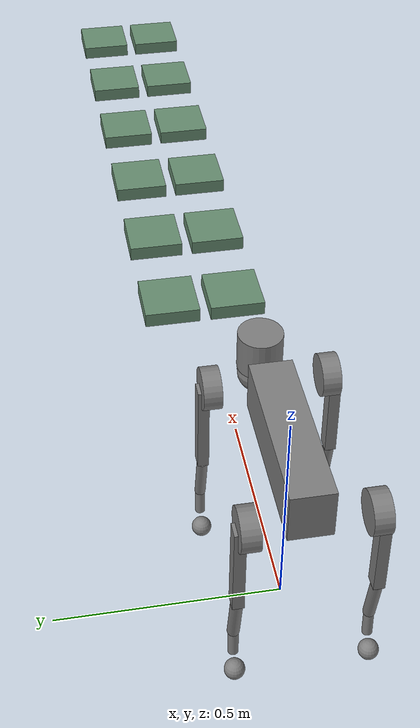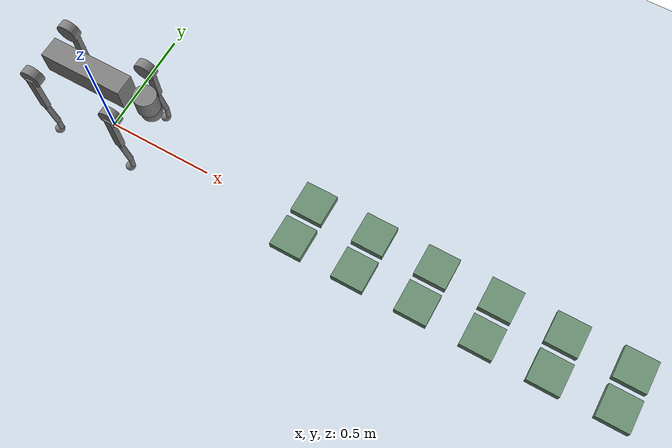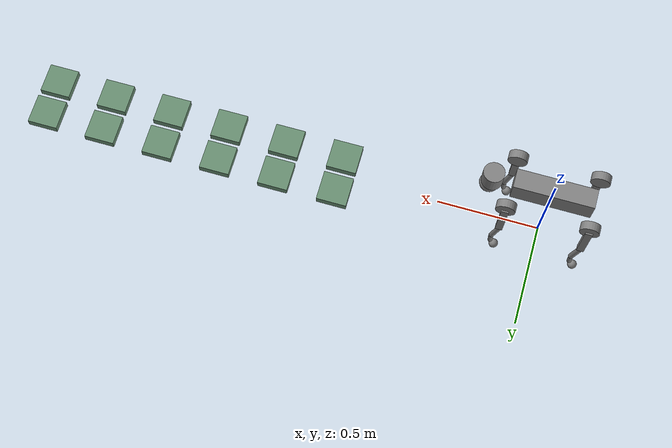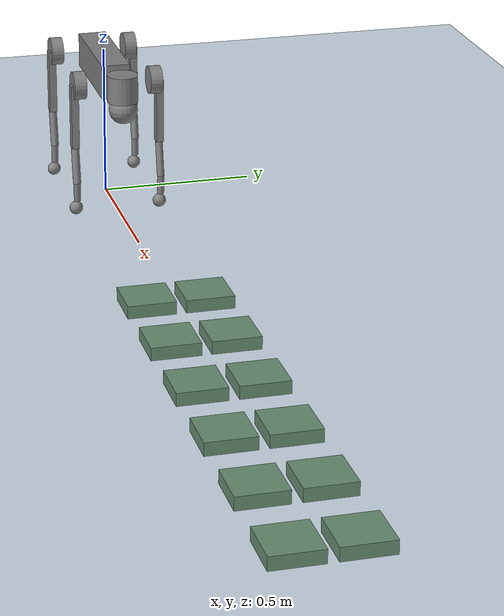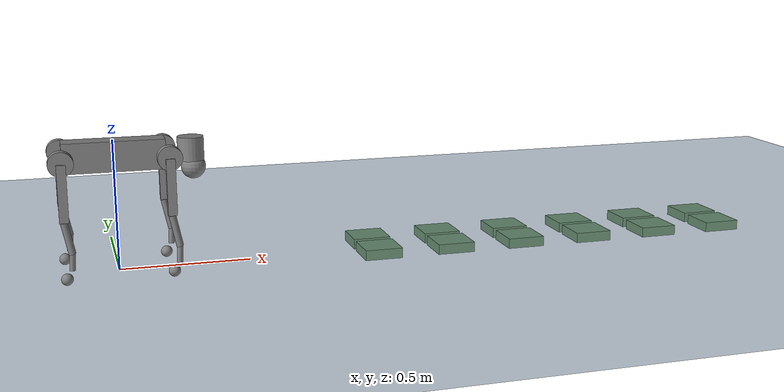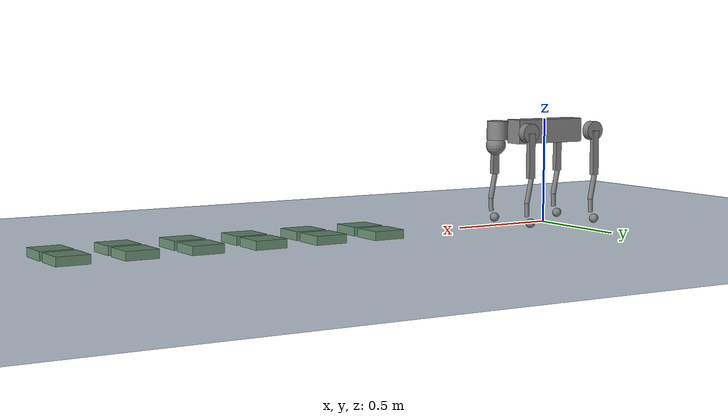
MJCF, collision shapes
<mujoco model="go2_stepping">
  <compiler angle="radian" meshdir="../../mujoco_menagerie/unitree_go2/assets" autolimits="true"/>

  <option cone="elliptic" impratio="100"/>

  <default>
    <default class="go2">
      <geom friction="0.6" margin="0.001" condim="1"/>
      <joint axis="0 1 0" damping="2" armature="0.01" frictionloss="0.2" actuatorfrcrange="-23.7 23.7"/>
      <motor ctrlrange="-23.7 23.7"/>
      <default class="abduction">
        <joint axis="1 0 0" range="-1.0472 1.0472"/>
      </default>
      <default class="hip">
        <default class="front_hip">
          <joint range="-1.5708 3.4907"/>
        </default>
        <default class="back_hip">
          <joint range="-0.5236 4.5379"/>
        </default>
      </default>
      <default class="knee">
        <joint range="-2.7227 -0.83776" actuatorfrcrange="-45.43 45.43"/>
        <motor ctrlrange="-45.43 45.43"/>
      </default>
      <default class="visual">
        <geom type="mesh" contype="0" conaffinity="0" group="1"/>
      </default>
      <default class="collision">
        <geom group="3"/>
        <default class="foot">
          <geom size="0.022" pos="-0.002 0 -0.213" priority="1" solimp="0.015 1 0.022" condim="6"
            friction="0.8 0.02 0.01"/>
        </default>
      </default>
    </default>
  </default>

  <asset>
    <material name="metal" rgba=".9 .95 .95 1"/>
    <material name="black" rgba="0 0 0 1"/>
    <material name="white" rgba="1 1 1 1"/>
    <material name="gray" rgba="0.671705 0.692426 0.774270 1"/>

    <mesh file="base_0.obj"/>
    <mesh file="base_1.obj"/>
    <mesh file="base_2.obj"/>
    <mesh file="base_3.obj"/>
    <mesh file="base_4.obj"/>
    <mesh file="hip_0.obj"/>
    <mesh file="hip_1.obj"/>
    <mesh file="thigh_0.obj"/>
    <mesh file="thigh_1.obj"/>
    <mesh file="thigh_mirror_0.obj"/>
    <mesh file="thigh_mirror_1.obj"/>
    <mesh file="calf_0.obj"/>
    <mesh file="calf_1.obj"/>
    <mesh file="calf_mirror_0.obj"/>
    <mesh file="calf_mirror_1.obj"/>
    <mesh file="foot.obj"/>
  </asset>

  <worldbody>
    <geom name="floor" type="plane" size="0 0 0.05" pos="0 0 0" condim="3" friction="0.8 0.02 0.01" rgba="0.8 0.85 0.9 1"/>
    <geom name="ss0L" type="box" group="2" size="0.075 0.075 0.02" pos="1.00 0.09 0.02" rgba="0.40 0.55 0.44 1"/>
    <geom name="ss0R" type="box" group="2" size="0.075 0.075 0.02" pos="1.00 -0.09 0.02" rgba="0.40 0.55 0.44 1"/>
    <geom name="ss1L" type="box" group="2" size="0.075 0.075 0.02" pos="1.30 0.09 0.02" rgba="0.40 0.55 0.44 1"/>
    <geom name="ss1R" type="box" group="2" size="0.075 0.075 0.02" pos="1.30 -0.09 0.02" rgba="0.40 0.55 0.44 1"/>
    <geom name="ss2L" type="box" group="2" size="0.075 0.075 0.02" pos="1.60 0.09 0.02" rgba="0.40 0.55 0.44 1"/>
    <geom name="ss2R" type="box" group="2" size="0.075 0.075 0.02" pos="1.60 -0.09 0.02" rgba="0.40 0.55 0.44 1"/>
    <geom name="ss3L" type="box" group="2" size="0.075 0.075 0.02" pos="1.90 0.09 0.02" rgba="0.40 0.55 0.44 1"/>
    <geom name="ss3R" type="box" group="2" size="0.075 0.075 0.02" pos="1.90 -0.09 0.02" rgba="0.40 0.55 0.44 1"/>
    <geom name="ss4L" type="box" group="2" size="0.075 0.075 0.02" pos="2.20 0.09 0.02" rgba="0.40 0.55 0.44 1"/>
    <geom name="ss4R" type="box" group="2" size="0.075 0.075 0.02" pos="2.20 -0.09 0.02" rgba="0.40 0.55 0.44 1"/>
    <geom name="ss5L" type="box" group="2" size="0.075 0.075 0.02" pos="2.50 0.09 0.02" rgba="0.40 0.55 0.44 1"/>
    <geom name="ss5R" type="box" group="2" size="0.075 0.075 0.02" pos="2.50 -0.09 0.02" rgba="0.40 0.55 0.44 1"/>
    <body name="base" pos="0 0 0.445" childclass="go2">
      <inertial pos="0.021112 0 -0.005366" quat="-0.000543471 0.713435 -0.00173769 0.700719" mass="6.921"
        diaginertia="0.107027 0.0980771 0.0244531"/>
      <freejoint/>
      <geom mesh="base_0" material="black" class="visual"/>
      <geom mesh="base_1" material="black" class="visual"/>
      <geom mesh="base_2" material="black" class="visual"/>
      <geom mesh="base_3" material="white" class="visual"/>
      <geom mesh="base_4" material="gray" class="visual"/>
      <geom size="0.1881 0.04675 0.057" type="box" class="collision"/>
      <geom size="0.05 0.045" pos="0.285 0 0.01" type="cylinder" class="collision"/>
      <geom size="0.047" pos="0.293 0 -0.06" class="collision"/>
      <site name="imu" pos="-0.02557 0 0.04232"/>
      <body name="FL_hip_link" pos="0.1934 0.0465 0">
        <inertial pos="-0.0054 0.00194 -0.000105" quat="0.497014 0.499245 0.505462 0.498237" mass="0.678"
          diaginertia="0.00088403 0.000596003 0.000479967"/>
        <joint name="FL_hip_joint" class="abduction"/>
        <geom mesh="hip_0" material="metal" class="visual"/>
        <geom mesh="hip_1" material="gray" class="visual"/>
        <geom size="0.046 0.02" pos="0 0.08 0" quat="1 1 0 0" type="cylinder" class="collision"/>
        <body name="FL_thigh" pos="0 0.0955 0">
          <inertial pos="-0.00374 -0.0223 -0.0327" quat="0.829533 0.0847635 -0.0200632 0.551623" mass="1.152"
            diaginertia="0.00594973 0.00584149 0.000878787"/>
          <joint name="FL_thigh_joint" class="front_hip"/>
          <geom mesh="thigh_0" material="metal" class="visual"/>
          <geom mesh="thigh_1" material="gray" class="visual"/>
          <geom size="0.1065 0.01225 0.017" pos="0 0 -0.1065" quat="0.707107 0 0.707107 0" type="box"
            class="collision"/>
          <body name="FL_foot_link" pos="0 0 -0.213">
            <inertial pos="0.00629595 -0.000622121 -0.141417" quat="0.710672 0.00154099 -0.00450087 0.703508"
              mass="0.241352" diaginertia="0.0014901 0.00146356 5.31397e-05"/>
            <joint name="FL_calf_joint" class="knee"/>
            <geom mesh="calf_0" material="gray" class="visual"/>
            <geom mesh="calf_1" material="black" class="visual"/>
            <geom size="0.012 0.06" pos="0.008 0 -0.06" quat="0.994493 0 -0.104807 0" type="cylinder"
              class="collision"/>
            <geom size="0.011 0.0325" pos="0.02 0 -0.148" quat="0.999688 0 0.0249974 0" type="cylinder"
              class="collision"/>
            <geom pos="0 0 -0.213" mesh="foot" class="visual" material="black"/>
            <geom name="FL_sphere" class="foot"/>
          </body>
        </body>
      </body>
      <body name="FR_hip_link" pos="0.1934 -0.0465 0">
        <inertial pos="-0.0054 -0.00194 -0.000105" quat="0.498237 0.505462 0.499245 0.497014" mass="0.678"
          diaginertia="0.00088403 0.000596003 0.000479967"/>
        <joint name="FR_hip_joint" class="abduction"/>
        <geom mesh="hip_0" material="metal" class="visual" quat="4.63268e-05 1 0 0"/>
        <geom mesh="hip_1" material="gray" class="visual" quat="4.63268e-05 1 0 0"/>
        <geom size="0.046 0.02" pos="0 -0.08 0" quat="0.707107 0.707107 0 0" type="cylinder" class="collision"/>
        <body name="FR_thigh" pos="0 -0.0955 0">
          <inertial pos="-0.00374 0.0223 -0.0327" quat="0.551623 -0.0200632 0.0847635 0.829533" mass="1.152"
            diaginertia="0.00594973 0.00584149 0.000878787"/>
          <joint name="FR_thigh_joint" class="front_hip"/>
          <geom mesh="thigh_mirror_0" material="metal" class="visual"/>
          <geom mesh="thigh_mirror_1" material="gray" class="visual"/>
          <geom size="0.1065 0.01225 0.017" pos="0 0 -0.1065" quat="0.707107 0 0.707107 0" type="box"
            class="collision"/>
          <body name="FR_foot_link" pos="0 0 -0.213">
            <inertial pos="0.00629595 0.000622121 -0.141417" quat="0.703508 -0.00450087 0.00154099 0.710672"
              mass="0.241352" diaginertia="0.0014901 0.00146356 5.31397e-05"/>
            <joint name="FR_calf_joint" class="knee"/>
            <geom mesh="calf_mirror_0" material="gray" class="visual"/>
            <geom mesh="calf_mirror_1" material="black" class="visual"/>
            <geom size="0.013 0.06" pos="0.01 0 -0.06" quat="0.995004 0 -0.0998334 0" type="cylinder"
              class="collision"/>
            <geom size="0.011 0.0325" pos="0.02 0 -0.148" quat="0.999688 0 0.0249974 0" type="cylinder"
              class="collision"/>
            <geom pos="0 0 -0.213" mesh="foot" class="visual" material="black"/>
            <geom name="FR_sphere" class="foot"/>
          </body>
        </body>
      </body>
      <body name="HL_hip_link" pos="-0.1934 0.0465 0">
        <inertial pos="0.0054 0.00194 -0.000105" quat="0.505462 0.498237 0.497014 0.499245" mass="0.678"
          diaginertia="0.00088403 0.000596003 0.000479967"/>
        <joint name="HL_hip_joint" class="abduction"/>
        <geom mesh="hip_0" material="metal" class="visual" quat="4.63268e-05 0 1 0"/>
        <geom mesh="hip_1" material="gray" class="visual" quat="4.63268e-05 0 1 0"/>
        <geom size="0.046 0.02" pos="0 0.08 0" quat="0.707107 0.707107 0 0" type="cylinder" class="collision"/>
        <body name="HL_thigh" pos="0 0.0955 0">
          <inertial pos="-0.00374 -0.0223 -0.0327" quat="0.829533 0.0847635 -0.0200632 0.551623" mass="1.152"
            diaginertia="0.00594973 0.00584149 0.000878787"/>
          <joint name="HL_thigh_joint" class="back_hip"/>
          <geom mesh="thigh_0" material="metal" class="visual"/>
          <geom mesh="thigh_1" material="gray" class="visual"/>
          <geom size="0.1065 0.01225 0.017" pos="0 0 -0.1065" quat="0.707107 0 0.707107 0" type="box"
            class="collision"/>
          <body name="HL_foot_link" pos="0 0 -0.213">
            <inertial pos="0.00629595 -0.000622121 -0.141417" quat="0.710672 0.00154099 -0.00450087 0.703508"
              mass="0.241352" diaginertia="0.0014901 0.00146356 5.31397e-05"/>
            <joint name="HL_calf_joint" class="knee"/>
            <geom mesh="calf_0" material="gray" class="visual"/>
            <geom mesh="calf_1" material="black" class="visual"/>
            <geom size="0.013 0.06" pos="0.01 0 -0.06" quat="0.995004 0 -0.0998334 0" type="cylinder"
              class="collision"/>
            <geom size="0.011 0.0325" pos="0.02 0 -0.148" quat="0.999688 0 0.0249974 0" type="cylinder"
              class="collision"/>
            <geom pos="0 0 -0.213" mesh="foot" class="visual" material="black"/>
            <geom name="HL_sphere" class="foot"/>
          </body>
        </body>
      </body>
      <body name="HR_hip_link" pos="-0.1934 -0.0465 0">
        <inertial pos="0.0054 -0.00194 -0.000105" quat="0.499245 0.497014 0.498237 0.505462" mass="0.678"
          diaginertia="0.00088403 0.000596003 0.000479967"/>
        <joint name="HR_hip_joint" class="abduction"/>
        <geom mesh="hip_0" material="metal" class="visual" quat="2.14617e-09 4.63268e-05 4.63268e-05 -1"/>
        <geom mesh="hip_1" material="gray" class="visual" quat="2.14617e-09 4.63268e-05 4.63268e-05 -1"/>
        <geom size="0.046 0.02" pos="0 -0.08 0" quat="0.707107 0.707107 0 0" type="cylinder" class="collision"/>
        <body name="HR_thigh" pos="0 -0.0955 0">
          <inertial pos="-0.00374 0.0223 -0.0327" quat="0.551623 -0.0200632 0.0847635 0.829533" mass="1.152"
            diaginertia="0.00594973 0.00584149 0.000878787"/>
          <joint name="HR_thigh_joint" class="back_hip"/>
          <geom mesh="thigh_mirror_0" material="metal" class="visual"/>
          <geom mesh="thigh_mirror_1" material="gray" class="visual"/>
          <geom size="0.1065 0.01225 0.017" pos="0 0 -0.1065" quat="0.707107 0 0.707107 0" type="box"
            class="collision"/>
          <body name="HR_foot_link" pos="0 0 -0.213">
            <inertial pos="0.00629595 0.000622121 -0.141417" quat="0.703508 -0.00450087 0.00154099 0.710672"
              mass="0.241352" diaginertia="0.0014901 0.00146356 5.31397e-05"/>
            <joint name="HR_calf_joint" class="knee"/>
            <geom mesh="calf_mirror_0" material="gray" class="visual"/>
            <geom mesh="calf_mirror_1" material="black" class="visual"/>
            <geom size="0.013 0.06" pos="0.01 0 -0.06" quat="0.995004 0 -0.0998334 0" type="cylinder"
              class="collision"/>
            <geom size="0.011 0.0325" pos="0.02 0 -0.148" quat="0.999688 0 0.0249974 0" type="cylinder"
              class="collision"/>
            <geom pos="0 0 -0.213" mesh="foot" class="visual" material="black"/>
            <geom name="HR_sphere" class="foot"/>
          </body>
        </body>
      </body>
    </body>
  </worldbody>

  <actuator>
    <motor class="abduction" name="FL_hip_link" joint="FL_hip_joint"/>
    <motor class="hip" name="FL_thigh" joint="FL_thigh_joint"/>
    <motor class="knee" name="FL_foot_link" joint="FL_calf_joint"/>
    <motor class="abduction" name="FR_hip_link" joint="FR_hip_joint"/>
    <motor class="hip" name="FR_thigh" joint="FR_thigh_joint"/>
    <motor class="knee" name="FR_foot_link" joint="FR_calf_joint"/>
    <motor class="abduction" name="HL_hip_link" joint="HL_hip_joint"/>
    <motor class="hip" name="HL_thigh" joint="HL_thigh_joint"/>
    <motor class="knee" name="HL_foot_link" joint="HL_calf_joint"/>
    <motor class="abduction" name="HR_hip_link" joint="HR_hip_joint"/>
    <motor class="hip" name="HR_thigh" joint="HR_thigh_joint"/>
    <motor class="knee" name="HR_foot_link" joint="HR_calf_joint"/>
  </actuator>

  <keyframe>
    <key name="home" qpos="0 0 0.27 1 0 0 0 0 0.9 -1.8 0 0.9 -1.8 0 0.9 -1.8 0 0.9 -1.8"
      ctrl="0 0.9 -1.8 0 0.9 -1.8 0 0.9 -1.8 0 0.9 -1.8"/>
  </keyframe>
</mujoco>
